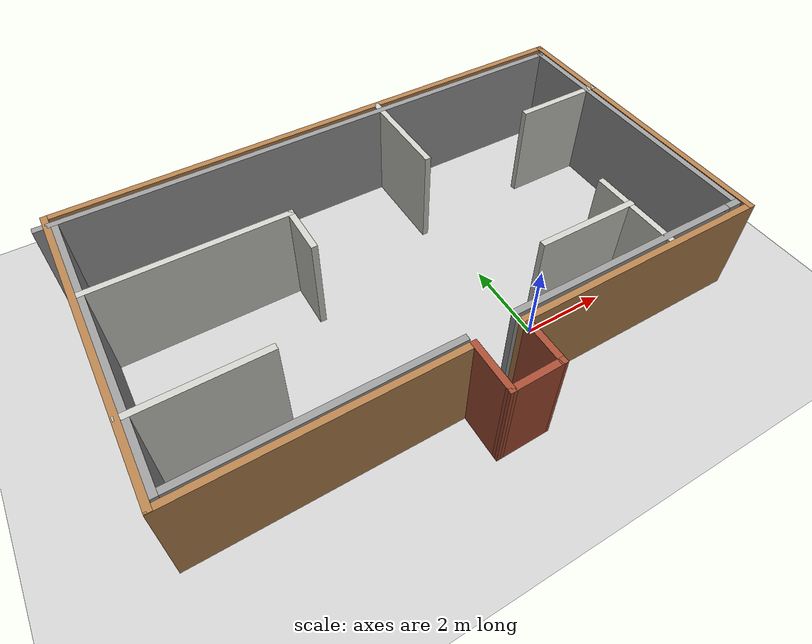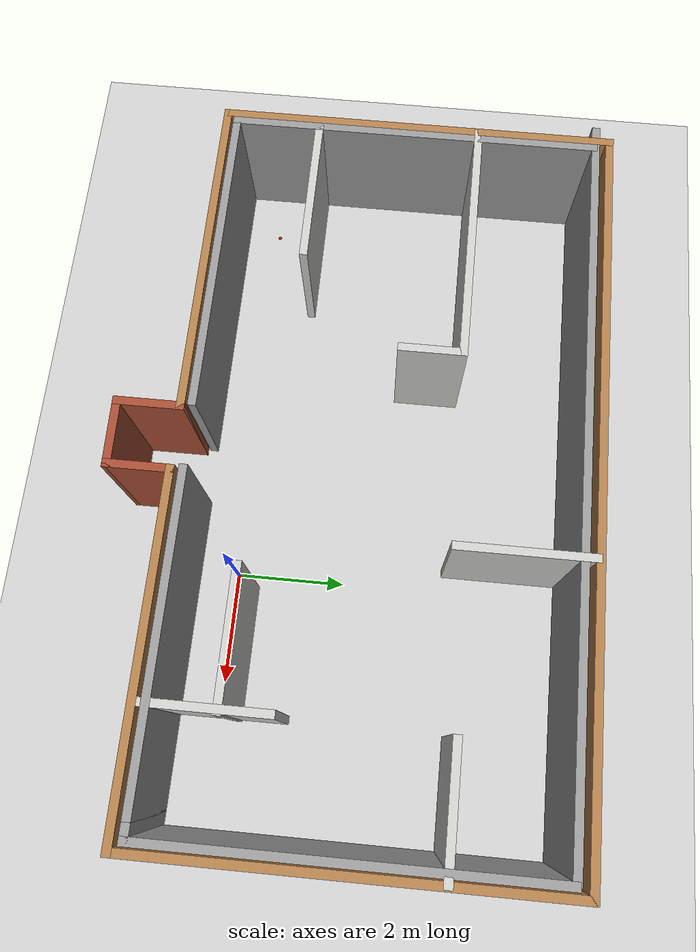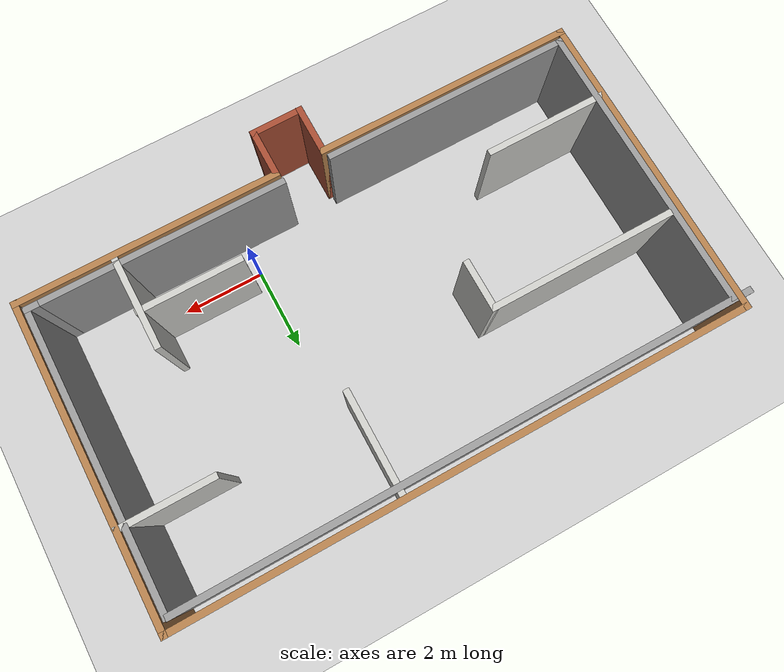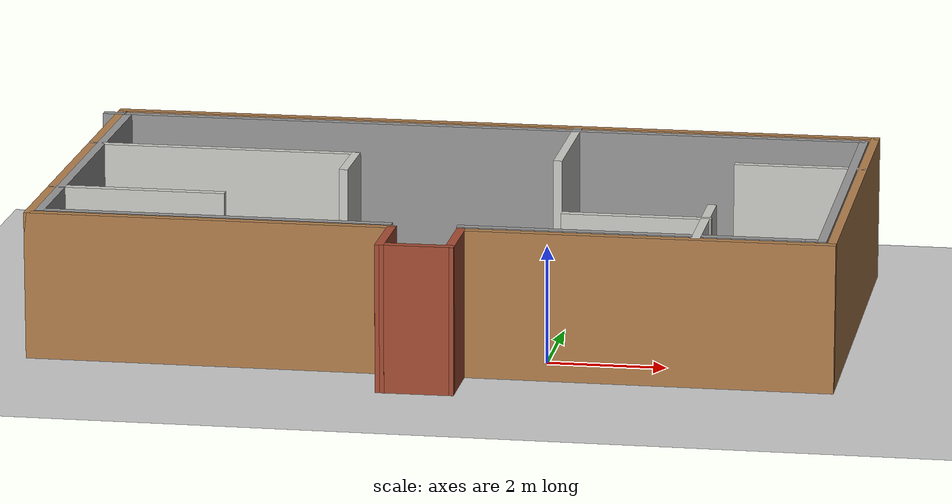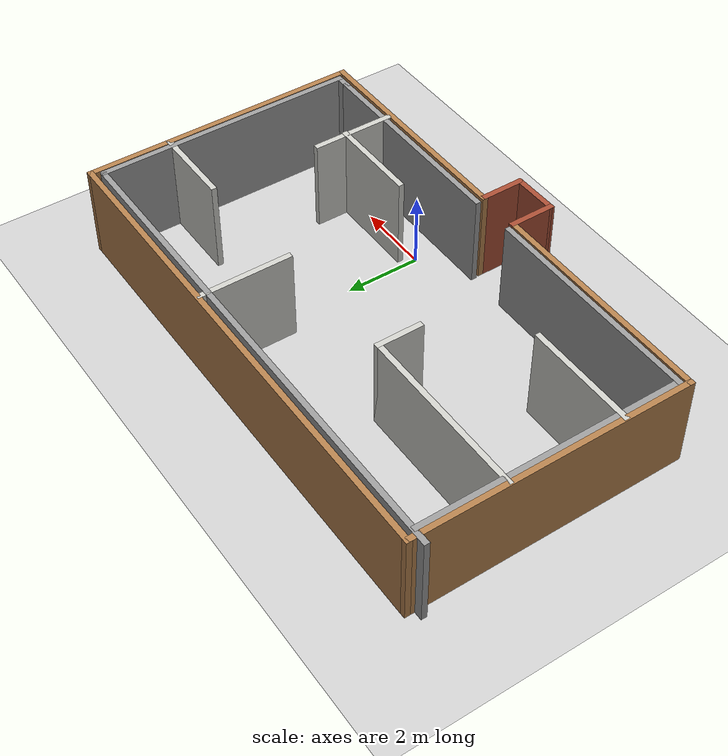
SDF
<sdf version="1.7">
 <world name="default">
  <model name="ground_plane">
   <static>1</static>
   <link name="link">
    <collision name="collision">
     <geometry><plane><normal>0 0 1</normal><size>100 100</size></plane></geometry>
     <surface>
      <contact><collide_bitmask>65535</collide_bitmask></contact>
      <friction><ode><mu>100</mu><mu2>50</mu2></ode></friction>
     </surface>
    </collision>
    <visual name="visual">
     <cast_shadows>0</cast_shadows>
     <geometry><plane><normal>0 0 1</normal><size>100 100</size></plane></geometry>
     <material>
      <script><uri>file://media/materials/scripts/gazebo.material</uri><name>Gazebo/Grey</name></script>
     </material>
    </visual>
   </link>
  </model>
  <light name="sun" type="directional">
   <pose>0 0 10 0 -0 0</pose>
   <diffuse>0.8 0.8 0.8 1</diffuse>
   <specular>0.2 0.2 0.2 1</specular>
   <attenuation>
    <range>1000</range>
    <constant>0.9</constant>
    <linear>0.01</linear>
    <quadratic>0.001</quadratic>
   </attenuation>
   <direction>-0.5 0.1 -0.9</direction>
   <spot><inner_angle>0</inner_angle><outer_angle>0</outer_angle><falloff>0</falloff></spot>
  </light>
  <scene><shadows>0</shadows><ambient>0.4 0.4 0.4 1</ambient><background>0.7 0.7 0.7 1</background></scene>
  <physics type="ode">
   <real_time_update_rate>1000</real_time_update_rate>
   <max_step_size>0.001</max_step_size>
   <real_time_factor>1</real_time_factor>
   <ode>
    <solver>
     <type>quick</type>
     <iters>150</iters>
     <precon_iters>0</precon_iters>
     <sor>1.4</sor>
     <use_dynamic_moi_rescaling>1</use_dynamic_moi_rescaling>
    </solver>
    <constraints>
     <cfm>1e-05</cfm>
     <erp>0.2</erp>
     <contact_max_correcting_vel>2000</contact_max_correcting_vel>
     <contact_surface_layer>0.01</contact_surface_layer>
    </constraints>
   </ode>
  </physics>
  <gravity>0 0 -9.8</gravity>
  <magnetic_field>6e-06 2.3e-05 -4.2e-05</magnetic_field>
  <atmosphere type="adiabatic"/>
  <audio><device>default</device></audio>
  <spherical_coordinates>
   <surface_model>EARTH_WGS84</surface_model>
   <latitude_deg>0</latitude_deg>
   <longitude_deg>0</longitude_deg>
   <elevation>0</elevation>
   <heading_deg>0</heading_deg>
  </spherical_coordinates>
  <model name="KIBAN">
   <pose>-1.862 2.09133 0 0 -0 0</pose>
   <link name="Wall_10">
    <collision name="Wall_10_Collision">
     <geometry><box><size>6.25 0.15 2.5</size></box></geometry>
     <pose>0 0 1.25 0 -0 0</pose>
    </collision>
    <visual name="Wall_10_Visual">
     <pose>0 0 1.25 0 -0 0</pose>
     <geometry><box><size>6.25 0.15 2.5</size></box></geometry>
     <material>
      <script><uri>file://media/materials/scripts/gazebo.material</uri><name>Gazebo/Wood</name></script>
      <ambient>1 1 1 1</ambient>
     </material>
     <meta><layer>0</layer></meta>
    </visual>
    <pose>3.625 -3.11695 0 0 -0 3.14159</pose>
   </link>
   <link name="Wall_12">
    <collision name="Wall_12_Collision">
     <geometry><box><size>2.25 0.15 2.5</size></box></geometry>
     <pose>0 0 1.25 0 -0 0</pose>
    </collision>
    <visual name="Wall_12_Visual">
     <pose>0 0 1.25 0 -0 0</pose>
     <geometry><box><size>2.25 0.15 2.5</size></box></geometry>
     <material>
      <script><uri>file://media/materials/scripts/gazebo.material</uri><name>Gazebo/CeilingTiled</name></script>
      <ambient>1 1 1 1</ambient>
     </material>
     <meta><layer>0</layer></meta>
    </visual>
    <pose>5.60028 2.05184 0 0 -0 0</pose>
   </link>
   <link name="Wall_15">
    <collision name="Wall_15_Collision">
     <geometry><box><size>3 0.15 2.5</size></box></geometry>
     <pose>0 0 1.25 0 -0 0</pose>
    </collision>
    <visual name="Wall_15_Visual">
     <pose>0 0 1.25 0 -0 0</pose>
     <geometry><box><size>3 0.15 2.5</size></box></geometry>
     <material>
      <script><uri>file://media/materials/scripts/gazebo.material</uri><name>Gazebo/CeilingTiled</name></script>
      <ambient>1 1 1 1</ambient>
     </material>
     <meta><layer>0</layer></meta>
    </visual>
    <pose>-5.2234 -1.32639 0 0 -0 0</pose>
   </link>
   <link name="Wall_17">
    <collision name="Wall_17_Collision">
     <geometry><box><size>4.75 0.15 2.5</size></box></geometry>
     <pose>0 0 1.25 0 -0 0</pose>
    </collision>
    <visual name="Wall_17_Visual">
     <pose>0 0 1.25 0 -0 0</pose>
     <geometry><box><size>4.75 0.15 2.5</size></box></geometry>
     <material>
      <script><uri>file://media/materials/scripts/gazebo.material</uri><name>Gazebo/CeilingTiled</name></script>
      <ambient>1 1 1 1</ambient>
     </material>
     <meta><layer>0</layer></meta>
    </visual>
    <pose>-4.3484 1.73263 0 0 -0 0</pose>
   </link>
   <link name="Wall_19">
    <collision name="Wall_19_Collision">
     <geometry><box><size>1.25 0.15 2.5</size></box></geometry>
     <pose>0 0 1.25 0 -0 0</pose>
    </collision>
    <visual name="Wall_19_Visual">
     <pose>0 0 1.25 0 -0 0</pose>
     <geometry><box><size>1.25 0.15 2.5</size></box></geometry>
     <material>
      <script><uri>file://media/materials/scripts/gazebo.material</uri><name>Gazebo/CeilingTiled</name></script>
      <ambient>1 1 1 1</ambient>
     </material>
     <meta><layer>0</layer></meta>
    </visual>
    <pose>-2.0484 1.18263 0 0 -0 -1.5708</pose>
   </link>
   <link name="Wall_21">
    <collision name="Wall_21_Collision">
     <geometry><box><size>2.25 0.15 2.5</size></box></geometry>
     <pose>0 0 1.25 0 -0 0</pose>
    </collision>
    <visual name="Wall_21_Visual">
     <pose>0 0 1.25 0 -0 0</pose>
     <geometry><box><size>2.25 0.15 2.5</size></box></geometry>
     <material>
      <script><uri>file://media/materials/scripts/gazebo.material</uri><name>Gazebo/CeilingTiled</name></script>
      <ambient>1 1 1 1</ambient>
     </material>
     <meta><layer>0</layer></meta>
    </visual>
    <pose>4.44388 -1.9522 0 0 -0 1.5708</pose>
   </link>
   <link name="Wall_23">
    <collision name="Wall_23_Collision">
     <geometry><box><size>2.5 0.15 2.5</size></box></geometry>
     <pose>0 0 1.25 0 -0 0</pose>
    </collision>
    <visual name="Wall_23_Visual">
     <pose>0 0 1.25 0 -0 0</pose>
     <geometry><box><size>2.5 0.15 2.5</size></box></geometry>
     <material>
      <script><uri>file://media/materials/scripts/gazebo.material</uri><name>Gazebo/CeilingTiled</name></script>
      <ambient>1 1 1 1</ambient>
     </material>
     <meta><layer>0</layer></meta>
    </visual>
    <pose>3.29548 -1.75199 0 0 -0 3.14159</pose>
   </link>
   <link name="Wall_25">
    <collision name="Wall_25_Collision">
     <geometry><box><size>2.5 0.15 2.5</size></box></geometry>
     <pose>0 0 1.25 0 -0 0</pose>
    </collision>
    <visual name="Wall_25_Visual">
     <pose>0 0 1.25 0 -0 0</pose>
     <geometry><box><size>2.5 0.15 2.5</size></box></geometry>
     <material>
      <script><uri>file://media/materials/scripts/gazebo.material</uri><name>Gazebo/CeilingTiled</name></script>
      <ambient>1 1 1 1</ambient>
     </material>
     <meta><layer>0</layer></meta>
    </visual>
    <pose>1.46466 3.00485 0 0 -0 -1.5708</pose>
   </link>
   <link name="Wall_27">
    <collision name="Wall_27_Collision">
     <geometry><box><size>1.26512 0.15 2.5</size></box></geometry>
     <pose>0 0 1.25 0 -0 0</pose>
    </collision>
    <visual name="Wall_27_Visual">
     <pose>0 0 1.25 0 -0 0</pose>
     <geometry><box><size>1.26512 0.15 2.5</size></box></geometry>
     <material>
      <script><uri>file://media/materials/scripts/gazebo.material</uri><name>Gazebo/Bricks</name></script>
      <ambient>1 1 1 1</ambient>
     </material>
     <meta><layer>0</layer></meta>
    </visual>
    <pose>-0.575 -3.67451 0 0 -0 -1.5708</pose>
   </link>
   <link name="Wall_31">
    <collision name="Wall_31_Collision">
     <geometry><box><size>1.25 0.15 2.5</size></box></geometry>
     <pose>0 0 1.25 0 -0 0</pose>
    </collision>
    <visual name="Wall_31_Visual">
     <pose>0 0 1.25 0 -0 0</pose>
     <geometry><box><size>1.25 0.15 2.5</size></box></geometry>
     <material>
      <script><uri>file://media/materials/scripts/gazebo.material</uri><name>Gazebo/Bricks</name></script>
      <ambient>1 1 1 1</ambient>
     </material>
     <meta><layer>0</layer></meta>
    </visual>
    <pose>0.575 -3.66695 0 0 -0 -1.5708</pose>
   </link>
   <link name="Wall_32">
    <collision name="Wall_32_Collision">
     <geometry><box><size>1.3001 0.15 2.5</size></box></geometry>
     <pose>0 0 1.25 0 -0 0</pose>
    </collision>
    <visual name="Wall_32_Visual">
     <pose>0 0 1.25 0 -0 0</pose>
     <geometry><box><size>1.3001 0.15 2.5</size></box></geometry>
     <material>
      <script><uri>file://media/materials/scripts/gazebo.material</uri><name>Gazebo/Bricks</name></script>
      <ambient>1 1 1 1</ambient>
     </material>
     <meta><layer>0</layer></meta>
    </visual>
    <pose>0 -4.22451 0 0 -0 -3.12844</pose>
   </link>
   <link name="Wall_4">
    <collision name="Wall_4_Collision">
     <geometry><box><size>13.5 0.15 2.5</size></box></geometry>
     <pose>0 0 1.25 0 -0 0</pose>
    </collision>
    <visual name="Wall_4_Visual">
     <pose>0 0 1.25 0 -0 0</pose>
     <geometry><box><size>13.5 0.15 2.5</size></box></geometry>
     <material>
      <script><uri>file://media/materials/scripts/gazebo.material</uri><name>Gazebo/Wood</name></script>
      <ambient>1 1 1 1</ambient>
     </material>
     <meta><layer>0</layer></meta>
    </visual>
    <pose>0 4.23305 0 0 -0 0</pose>
   </link>
   <link name="Wall_5">
    <collision name="Wall_5_Collision">
     <geometry><box><size>7.5 0.15 2.5</size></box></geometry>
     <pose>0 0 1.25 0 -0 0</pose>
    </collision>
    <visual name="Wall_5_Visual">
     <pose>0 0 1.25 0 -0 0</pose>
     <geometry><box><size>7.5 0.15 2.5</size></box></geometry>
     <material>
      <script><uri>file://media/materials/scripts/gazebo.material</uri><name>Gazebo/Wood</name></script>
      <ambient>1 1 1 1</ambient>
     </material>
     <meta><layer>0</layer></meta>
    </visual>
    <pose>6.675 0.558051 0 0 -0 -1.5708</pose>
   </link>
   <link name="Wall_7">
    <collision name="Wall_7_Collision">
     <geometry><box><size>7.5 0.15 2.5</size></box></geometry>
     <pose>0 0 1.25 0 -0 0</pose>
    </collision>
    <visual name="Wall_7_Visual">
     <pose>0 0 1.25 0 -0 0</pose>
     <geometry><box><size>7.5 0.15 2.5</size></box></geometry>
     <material>
      <script><uri>file://media/materials/scripts/gazebo.material</uri><name>Gazebo/Wood</name></script>
      <ambient>1 1 1 1</ambient>
     </material>
     <meta><layer>0</layer></meta>
    </visual>
    <pose>-6.675 0.558051 0 0 -0 -1.5708</pose>
   </link>
   <link name="Wall_8">
    <collision name="Wall_8_Collision">
     <geometry><box><size>6.25 0.15 2.5</size></box></geometry>
     <pose>0 0 1.25 0 -0 0</pose>
    </collision>
    <visual name="Wall_8_Visual">
     <pose>0 0 1.25 0 -0 0</pose>
     <geometry><box><size>6.25 0.15 2.5</size></box></geometry>
     <material>
      <script><uri>file://media/materials/scripts/gazebo.material</uri><name>Gazebo/Wood</name></script>
      <ambient>1 1 1 1</ambient>
     </material>
     <meta><layer>0</layer></meta>
    </visual>
    <pose>-3.625 -3.11695 0 0 -0 0</pose>
   </link>
   <static>1</static>
  </model>
  <model name="orange_ball_1">
   <link name="ball">
    <inertial>
     <mass>0.03</mass>
     <inertia>
      <ixx>1.268e-05</ixx>
      <iyy>1.268e-05</iyy>
      <izz>1.268e-05</izz>
      <ixy>0</ixy>
      <ixz>0</ixz>
      <iyz>0</iyz>
     </inertia>
    </inertial>
    <visual name="visual">
     <geometry><sphere><radius>0.0325</radius></sphere></geometry>
     <material>
      <script><uri>file://media/materials/scripts/gazebo.material</uri><name>Gazebo/RedBright</name></script>
      <shader type="pixel"><normal_map>__default__</normal_map></shader>
     </material>
    </visual>
    <collision name="collision">
     <geometry><sphere><radius>0.0325</radius></sphere></geometry>
     <surface>
      <friction>
       <ode><mu>1</mu><mu2>1</mu2><fdir1>0 0 0</fdir1><slip1>0</slip1><slip2>0</slip2></ode>
       <torsional>
        <coefficient>1</coefficient>
        <patch_radius>0</patch_radius>
        <surface_radius>0</surface_radius>
        <use_patch_radius>1</use_patch_radius>
        <ode><slip>0</slip></ode>
       </torsional>
      </friction>
      <bounce><restitution_coefficient>0</restitution_coefficient><threshold>1e+06</threshold></bounce>
      <contact>
       <collide_without_contact>0</collide_without_contact>
       <collide_without_contact_bitmask>1</collide_without_contact_bitmask>
       <collide_bitmask>1</collide_bitmask>
       <ode>
        <soft_cfm>0</soft_cfm>
        <soft_erp>0.2</soft_erp>
        <kp>1e+13</kp>
        <kd>1</kd>
        <max_vel>0.01</max_vel>
        <min_depth>0</min_depth>
       </ode>
       <bullet>
        <split_impulse>1</split_impulse>
        <split_impulse_penetration_threshold>-0.01</split_impulse_penetration_threshold>
        <soft_cfm>0</soft_cfm>
        <soft_erp>0.2</soft_erp>
        <kp>1e+13</kp>
        <kd>1</kd>
       </bullet>
      </contact>
     </surface>
    </collision>
   </link>
   <static>0</static>
   <pose>-7.3725 -0.106563 0.0325 0 -0 0</pose>
  </model>
  <plugin name="gazebo_link_attacher" filename="libgazebo_link_attacher.so"/>
  <plugin name="gazebo_ros_state" filename="libgazebo_ros_state.so"/>
  <model name="ball_bearing">
   <link name="link">
    <pose>0 0 0.003 0 -0 0</pose>
    <inertial>
     <mass>0.0011</mass>
     <inertia>
      <ixx>3.96e-09</ixx>
      <ixy>0</ixy>
      <ixz>0</ixz>
      <iyy>3.96e-09</iyy>
      <iyz>0</iyz>
      <izz>3.96e-09</izz>
     </inertia>
    </inertial>
    <collision name="collision">
     <geometry><sphere><radius>0.003</radius></sphere></geometry>
     <surface>
      <contact>
       <poissons_ratio>0.305</poissons_ratio>
       <elastic_modulus>2e+11</elastic_modulus>
       <ode><kp>100000</kp><kd>100</kd><max_vel>100</max_vel><min_depth>0.001</min_depth></ode>
      </contact>
      <friction>
       <torsional>
        <coefficient>1</coefficient>
        <use_patch_radius>0</use_patch_radius>
        <surface_radius>0.01</surface_radius>
       </torsional>
      </friction>
     </surface>
    </collision>
    <visual name="visual">
     <geometry><sphere><radius>0.003</radius></sphere></geometry>
     <material>
      <script><uri>file://media/materials/scripts/gazebo.material</uri><name>Gazebo/Grey</name></script>
     </material>
    </visual>
    <velocity_decay><linear>0</linear><angular>0.005</angular></velocity_decay>
   </link>
   <pose>-2.213 1.18764 -0.000799 0 -0 0</pose>
  </model>
  <model name="KIBAN_0">
   <pose>-2.06273 2.61774 0 0 -0 0</pose>
   <link name="Wall_10">
    <collision name="Wall_10_Collision">
     <geometry><box><size>7 0.15 2.5</size></box></geometry>
     <pose>0 0 1.25 0 -0 0</pose>
    </collision>
    <visual name="Wall_10_Visual">
     <pose>0 0 1.25 0 -0 0</pose>
     <geometry><box><size>7 0.15 2.5</size></box></geometry>
     <material>
      <script><uri>file://media/materials/scripts/gazebo.material</uri><name>Gazebo/Grey</name></script>
      <ambient>1 1 1 1</ambient>
     </material>
     <meta><layer>0</layer></meta>
    </visual>
    <pose>-6.32602 -0.02313 0 0 -0 -1.5708</pose>
   </link>
   <link name="Wall_11">
    <collision name="Wall_11_Collision">
     <geometry><box><size>6 0.15 2.5</size></box></geometry>
     <pose>0 0 1.25 0 -0 0</pose>
    </collision>
    <visual name="Wall_11_Visual">
     <pose>0 0 1.25 0 -0 0</pose>
     <geometry><box><size>6 0.15 2.5</size></box></geometry>
     <material>
      <script><uri>file://media/materials/scripts/gazebo.material</uri><name>Gazebo/Grey</name></script>
      <ambient>1 1 1 1</ambient>
     </material>
     <meta><layer>0</layer></meta>
    </visual>
    <pose>-3.40102 -3.44813 0 0 -0 0</pose>
   </link>
   <link name="Wall_13">
    <collision name="Wall_13_Collision">
     <geometry><box><size>5.75 0.15 2.5</size></box></geometry>
     <pose>0 0 1.25 0 -0 0</pose>
    </collision>
    <visual name="Wall_13_Visual">
     <pose>0 0 1.25 0 -0 0</pose>
     <geometry><box><size>5.75 0.15 2.5</size></box></geometry>
     <material>
      <script><uri>file://media/materials/scripts/gazebo.material</uri><name>Gazebo/Grey</name></script>
      <ambient>1 1 1 1</ambient>
     </material>
     <meta><layer>0</layer></meta>
    </visual>
    <pose>3.55194 -3.42166 0 0 -0 0</pose>
   </link>
   <link name="Wall_14">
    <collision name="Wall_14_Collision">
     <geometry><box><size>0.5 0.15 2.5</size></box></geometry>
     <pose>0 0 1.25 0 -0 0</pose>
    </collision>
    <visual name="Wall_14_Visual">
     <pose>0 0 1.25 0 -0 0</pose>
     <geometry><box><size>0.5 0.15 2.5</size></box></geometry>
     <material>
      <script><uri>file://media/materials/scripts/gazebo.material</uri><name>Gazebo/Grey</name></script>
      <ambient>1 1 1 1</ambient>
     </material>
     <meta><layer>0</layer></meta>
    </visual>
    <pose>6.52694 -3.42166 0 0 -0 0</pose>
   </link>
   <link name="Wall_15">
    <collision name="Wall_15_Collision">
     <geometry><box><size>7 0.15 2.5</size></box></geometry>
     <pose>0 0 1.25 0 -0 0</pose>
    </collision>
    <visual name="Wall_15_Visual">
     <pose>0 0 1.25 0 -0 0</pose>
     <geometry><box><size>7 0.15 2.5</size></box></geometry>
     <material>
      <script><uri>file://media/materials/scripts/gazebo.material</uri><name>Gazebo/Grey</name></script>
      <ambient>1 1 1 1</ambient>
     </material>
     <meta><layer>0</layer></meta>
    </visual>
    <pose>6.70194 0.003341 0 0 -0 1.5708</pose>
   </link>
   <link name="Wall_6">
    <collision name="Wall_6_Collision">
     <geometry><box><size>13.5 0.15 2.5</size></box></geometry>
     <pose>0 0 1.25 0 -0 0</pose>
    </collision>
    <visual name="Wall_6_Visual">
     <pose>0 0 1.25 0 -0 0</pose>
     <geometry><box><size>13.5 0.15 2.5</size></box></geometry>
     <material>
      <script><uri>file://media/materials/scripts/gazebo.material</uri><name>Gazebo/Grey</name></script>
      <ambient>1 1 1 1</ambient>
     </material>
     <meta><layer>0</layer></meta>
    </visual>
    <pose>-0.026944 3.44813 0 0 -0 0</pose>
   </link>
   <static>1</static>
  </model>
 </world>
</sdf>
